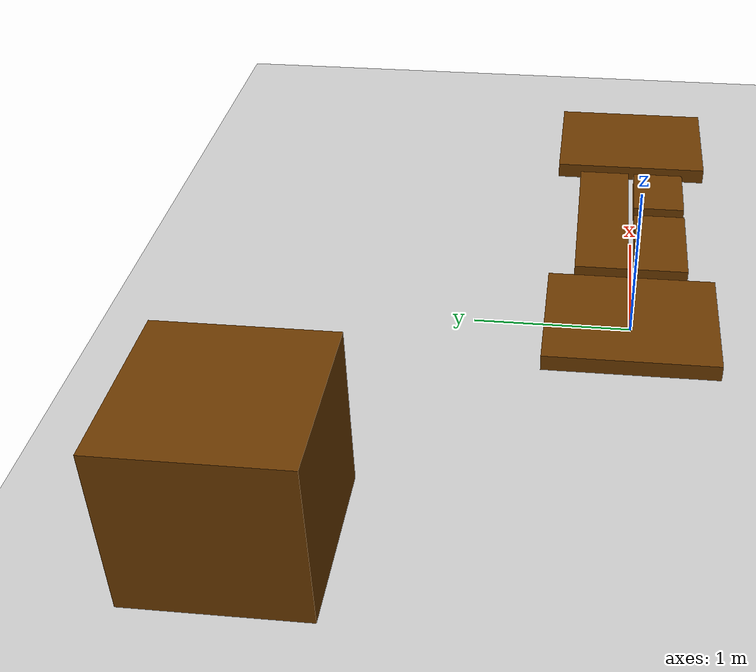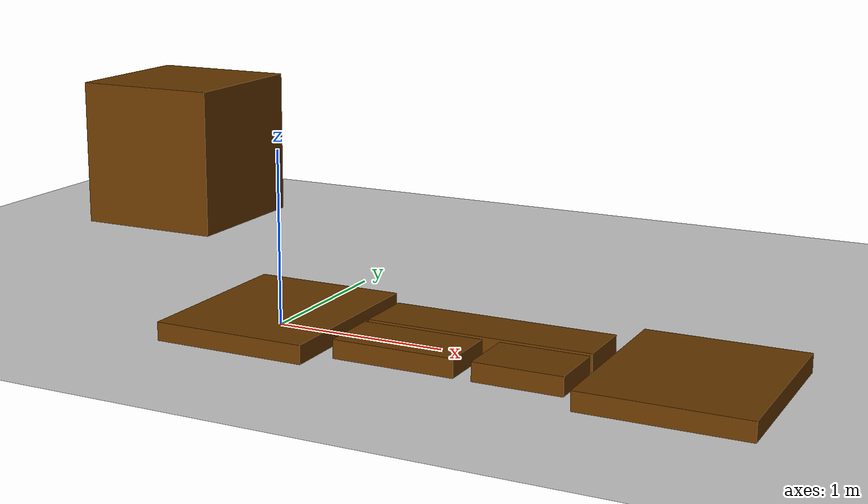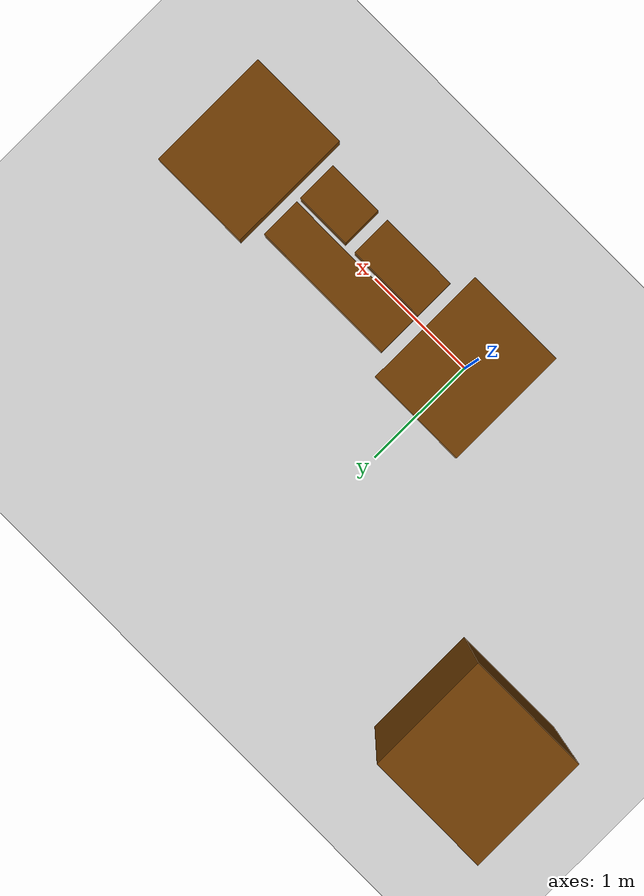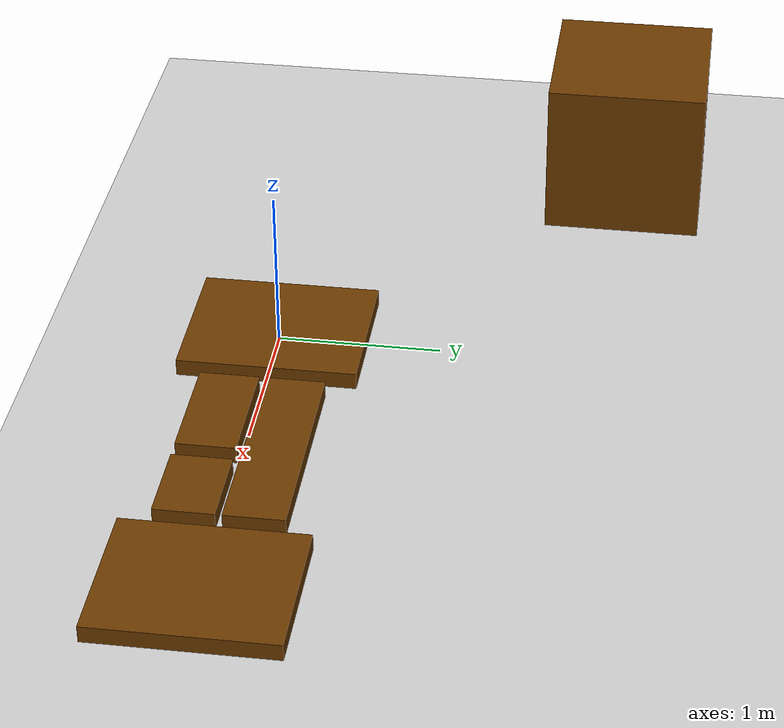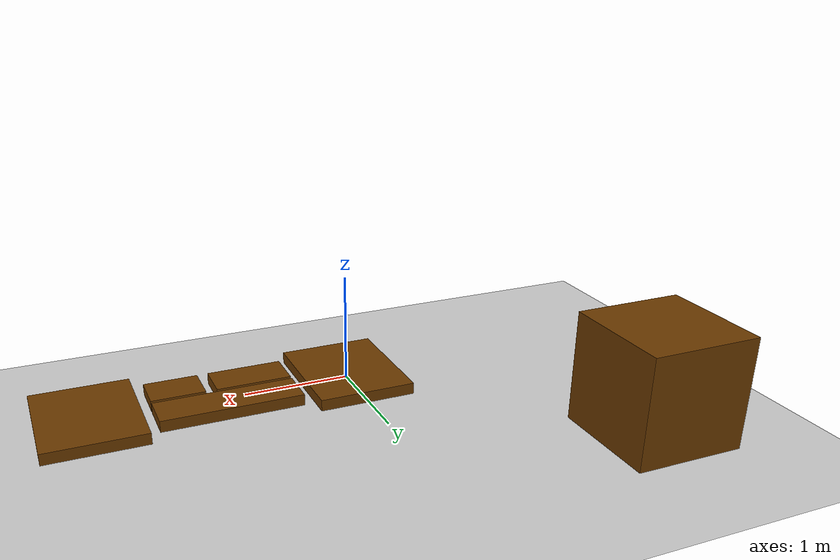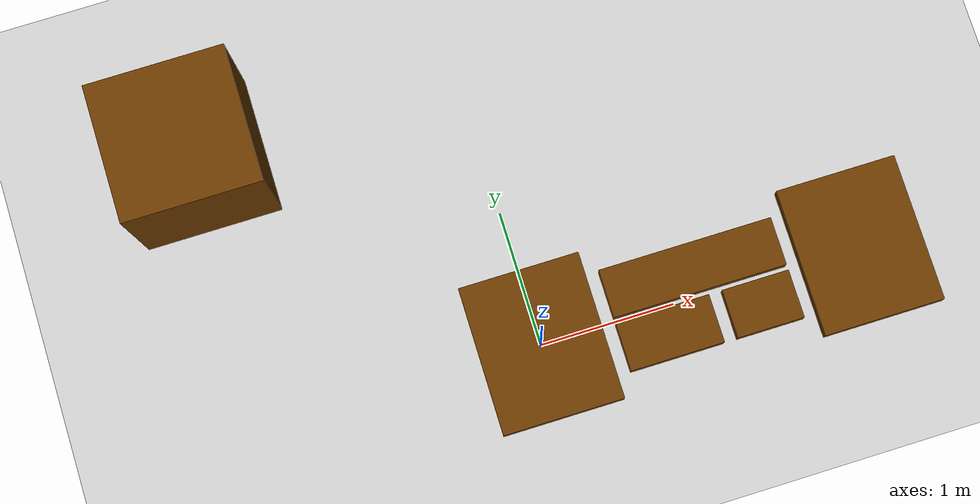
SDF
<?xml version="1.0" ?>
<sdf version="1.5">
    <world name="default">

        <physics type="ode">
            <max_step_size>0.001</max_step_size>
            <real_time_factor>1</real_time_factor>
            <real_time_update_rate>1000</real_time_update_rate>
            <gravity>0 0 -9.81</gravity>
            <ode>
                <solver>
                    <type>quick</type>
                    <iters>50</iters>
                    <sor>1.3</sor>
                </solver>
                <constraints>
                    <cfm>0.0</cfm>
                    <erp>0.2</erp>
                    <contact_max_correcting_vel>10.0</contact_max_correcting_vel>
                    <contact_surface_layer>0.001</contact_surface_layer>
                </constraints>
            </ode>
        </physics>

        <scene>
            <sky>
                <clouds>
                    <speed>12</speed>
                </clouds>
            </sky>
        </scene>
        <!-- A global light source -->
        <include>
            <uri>model://sun</uri>
        </include>
        <!-- A ground plane -->
        <include>
            <uri>model://ground_plane</uri>
        </include>
        <!-- environment blocks, obstacles or stairs -->
        <model name="static_environment">
            <static>true</static>
            <link name="static_box">
                <pose>-2 2 0.5 0 0 0</pose>
                <collision name="static_box_collision">
                    <geometry>
                        <box>
                            <size>1 1 1</size>
                        </box>
                    </geometry>
                </collision>
                <visual name="static_box_visual">
                    <geometry>
                        <box>
                            <size>1 1 1</size>
                        </box>
                    </geometry>
                    <material>
                        <ambient>0.2 0.2 0.2 1.0</ambient>
                        <diffuse>.421 0.225 0.0 1.0</diffuse>
                    </material>
                </visual>
            </link>

            <link name="floor1">
                <pose>0 0 0 0 0 1.5708</pose>
                <collision name="floor_collision">
                    <geometry>
                        <box>
                            <size>1.1 0.9 0.2</size>
                        </box>
                    </geometry>
                </collision>
                <visual name="floor1_visual">
                    <geometry>
                        <box>
                            <size>1.1 0.9 0.2</size>
                        </box>
                    </geometry>
                    <material>
                        <ambient>0.2 0.2 0.2 1.0</ambient>
                        <diffuse>.421 0.225 0.0 1.0</diffuse>
                    </material>
                </visual>
            </link>

            <link name="floor2">
                <pose>1.2 0.2 -0 0 0 0</pose>
                <collision name="floor2_collision">
                    <geometry>
                        <box>
                            <size>1.3 0.36 0.2</size>
                        </box>
                    </geometry>
                </collision>
                <visual name="floor2_visual">
                    <geometry>
                        <box>
                            <size>1.3 0.36 0.2</size>
                        </box>
                    </geometry>
                    <material>
                        <ambient>0.2 0.2 0.2 1.0</ambient>
                        <diffuse>.421 0.225 0.0 1.0</diffuse>
                    </material>
                </visual>
            </link>

            <link name="floor3">
                <pose>0.9 -0.2 0 0 0 0</pose>
                <collision name="floor3_collision">
                    <geometry>
                        <box>
                            <size>0.7 0.36 0.2</size>
                        </box>
                    </geometry>
                </collision>
                <visual name="floor3_visual">
                    <geometry>
                        <box>
                            <size>0.7 0.36 0.2</size>
                        </box>
                    </geometry>
                    <material>
                        <ambient>0.2 0.2 0.2 1.0</ambient>
                        <diffuse>.421 0.225 0.0 1.0</diffuse>
                    </material>
                </visual>
            </link>

            <link name="floor4">
                <pose>1.6 -0.2 0 0 0 0</pose>
                <collision name="floor4_collision">
                    <geometry>
                        <box>
                            <size>0.5 0.36 0.2</size>
                        </box>
                    </geometry>
                </collision>
                <visual name="floor4_visual">
                    <geometry>
                        <box>
                            <size>0.5 0.36 0.2</size>
                        </box>
                    </geometry>
                    <material>
                        <ambient>0.2 0.2 0.2 1.0</ambient>
                        <diffuse>.421 0.225 0.0 1.0</diffuse>
                    </material>
                </visual>
            </link>

            <link name="floor5">
                <pose>2.4 0 0 0 0 1.5708</pose>
                <collision name="floor5_collision">
                    <geometry>
                        <box>
                            <size>1.1 0.9 0.2</size>
                        </box>
                    </geometry>
                </collision>
                <visual name="floor5_visual">
                    <geometry>
                        <box>
                            <size>1.1 0.9 0.2</size>
                        </box>
                    </geometry>
                    <material>
                        <ambient>0.2 0.2 0.2 1.0</ambient>
                        <diffuse>.421 0.225 0.0 1.0</diffuse>
                    </material>
                </visual>
            </link>
        </model>

    </world>
</sdf>
